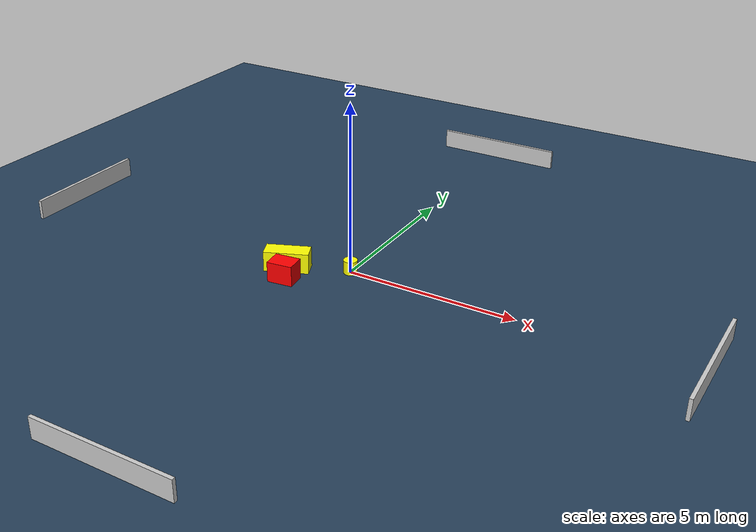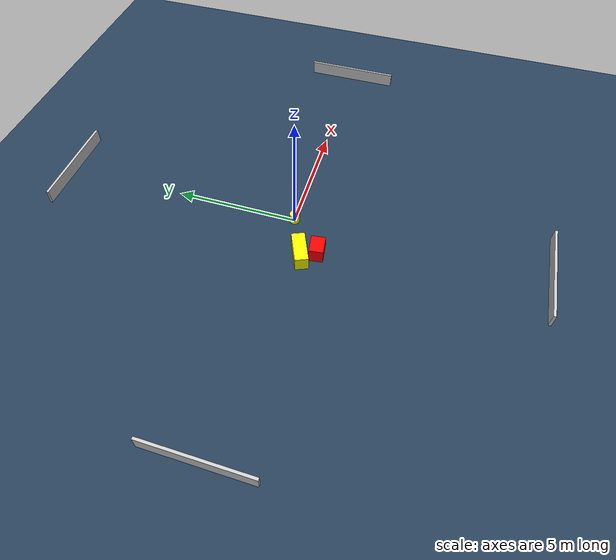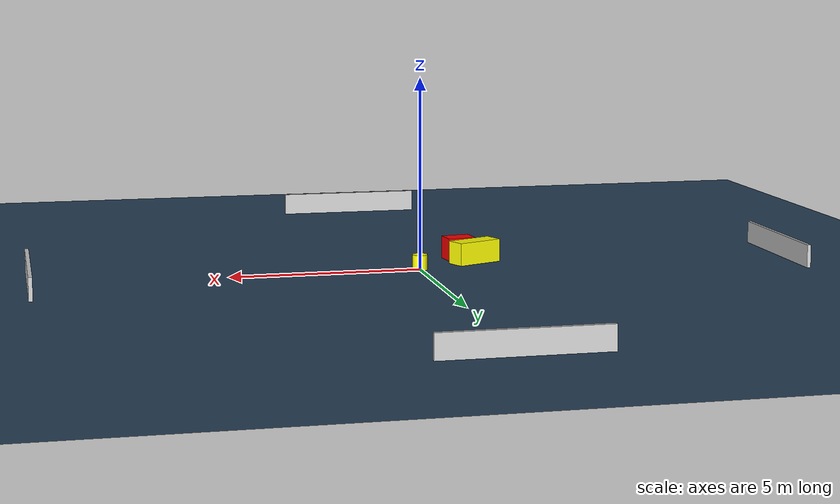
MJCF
<?xml version="1.0" ?>
<mujoco model="generated_environment">
  <option timestep="0.01" integrator="RK4" cone="elliptic"/>
  <default>
    <geom density="1"/>
  </default>
  <asset>
    <texture builtin="gradient" height="3072" name="skybox" rgb1="0.3 0.5 0.7" rgb2="0 0 0" type="skybox" width="512"/>
    <texture builtin="checker" height="300" name="groundplane" rgb1="0.2 0.3 0.4" rgb2="0.1 0.2 0.3" type="2d" width="300"/>
    <material name="groundplane" reflectance="0.2" texrepeat="5 5" texture="groundplane"/>
  </asset>
  <worldbody>
    <light dir="0 0 -1" directional="true" pos="0 0 1.5"/>
    <geom condim="3" friction="0.5 0.005 0.001" material="groundplane" name="floor" pos="0 0 0" size="0 0 0.05" type="plane"/>
    <body name="walls">
      <geom name="wall_1" condim="4" pos="-10.0 0.0 0.3" rgba="0.800000011920929 0.800000011920929 0.800000011920929 1.0" size="0.05 2.0 0.3" type="box"/>
      <geom name="wall_2" condim="4" pos="10.0 0.0 0.3" rgba="0.800000011920929 0.800000011920929 0.800000011920929 1.0" size="0.05 2.0 0.3" type="box"/>
      <geom name="wall_3" condim="4" pos="0.0 -10.0 0.3" rgba="0.800000011920929 0.800000011920929 0.800000011920929 1.0" size="2.0 0.05 0.3" type="box"/>
      <geom name="wall_4" condim="4" pos="0.0 10.0 0.3" rgba="0.800000011920929 0.800000011920929 0.800000011920929 1.0" size="2.0 0.05 0.3" type="box"/>
    </body>
    <body name="robot">
      <joint name="joint_x" type="slide" pos="0 0 0" axis="1 0 0"/>
      <joint name="joint_y" type="slide" pos="0 0 0" axis="0 1 0"/>
      <geom name="robot" type="cylinder" pos="0.0 0.0 0.2" size="0.2 0.2 0.0" mass="5.0" friction="1.0 0.005 0.0001" condim="4" rgba="1.0 1.0 0.0 1.0"/>
    </body>
    <body name="obstacle_1_movable">
      <geom name="obstacle_1_movable" condim="4" pos="-1.6461941188864493 -0.708469835990983 0.3" euler="0 0 293.0326587756296" friction="0.0 0.005 0.001" rgba="1.0 1.0 0.0 1.0" size="0.2641785905893565 0.642073481460494 0.3" type="box" mass="0.1"/>
      <joint type="free"/>
    </body>
    <body name="obstacle_2_static">
      <geom name="obstacle_2_static" condim="4" pos="-1.3564871658442463 -1.316442830881792 0.3" euler="0 0 97.11048550150022" friction="0.0 0.005 0.001" rgba="1.0 0.0 0.0 1.0" size="0.28021803763478925 0.37358450402177823 0.3" type="box"/>
    </body>
  </worldbody>
  <actuator>
    <motor name="actuator_x" joint="joint_x" gear="1" ctrlrange="-1 1"/>
    <motor name="actuator_y" joint="joint_y" gear="1" ctrlrange="-1 1"/>
  </actuator>
</mujoco>
